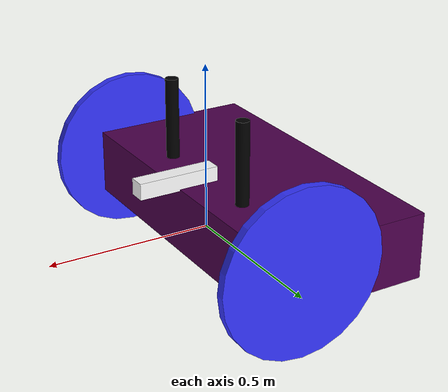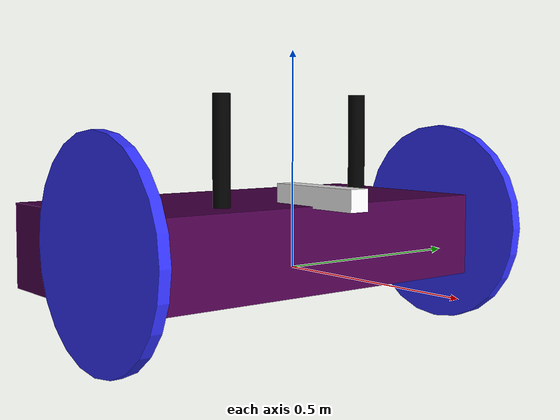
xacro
<?xml version="1.0" ?>
<robot name="robot" xmlns:xacro="http://www.ros.org/wiki/xacro">
  <!-- Materials -->
  <material name="white"><color rgba="1 1 1 1"/></material>
  <material name="orange"><color rgba="0.3 0 0.3 1"/></material>
  <material name="blue"><color rgba="0.2 0.2 1 1"/></material>
  <material name="black"><color rgba="0 0 0 1"/></material>
  <material name="red"><color rgba="1 0 0 1"/></material>
  <material name="gray"><color rgba="0.3 0.3 0.3 1"/></material>

  <!-- Base Link -->
  <link name="base_link"/>

  <link name="base_footprint"/>
  <joint name="base_footprint_joint" type="fixed">
    <parent link="base_link"/>
    <child link="base_footprint"/>
    <origin rpy="0 0 0" xyz="0 0 -0.138"/>
  </joint>

  <!-- Chassis -->
  <joint name="chassis_joint" type="fixed">
    <parent link="base_link"/>
    <child link="chassis"/>
    <origin xyz="-0.4 0 -0.05"/>
  </joint>

  <link name="chassis">
    <inertial>
      <origin rpy="0 0 0" xyz="0.25 0 0.1"/>
      <mass value="1.0"/>
      <inertia ixx="0.08666666666666667" ixy="0.0" ixz="0.0" iyy="0.02416666666666667" iyz="0.0" izz="0.10416666666666666"/>
    </inertial>
    <visual>
      <origin xyz="0.25 0 0.1"/>
      <geometry>
        <box size="0.5 1 0.2"/>
      </geometry>
      <material name="orange"/>
    </visual>
    <collision>
      <origin xyz="0.25 0 0.1"/>
      <geometry>
        <box size="0.5 1 0.2"/>
      </geometry>
    </collision>
  </link>
  <gazebo reference="chassis">
    <material>Gazebo/Orange</material>
  </gazebo>

  <!-- Left Wheel -->
  <joint name="left_wheel_joint" type="continuous">
    <parent link="base_link"/>
    <child link="left_wheel"/>
    <origin rpy="-1.5707963267948966 0 3.141592653589793" xyz="0 0.5 0.075"/>
    <axis xyz="0 0 1"/>
  </joint>

  <link name="left_wheel">
    <visual>
      <geometry>
        <cylinder length="0.026" radius="0.25"/>
      </geometry>
      <material name="blue"/>
    </visual>
    <collision>
      <geometry>
        <cylinder length="0.026" radius="0.25"/>
      </geometry>
    </collision>
    <inertial>
      <origin rpy="0 0 0" xyz="0 0 0"/>
      <mass value="0.05"/>
      <inertia ixx="0.0003" ixy="0.0" ixz="0.0" iyy="0.0003" iyz="0.0" izz="0.0005"/>
    </inertial>
  </link>
  <gazebo reference="left_wheel">
    <material>Gazebo/Blue</material>
  </gazebo>

  <!-- Right Wheel -->
  <joint name="right_wheel_joint" type="continuous">
    <parent link="base_link"/>
    <child link="right_wheel"/>
    <origin rpy="1.5707963267948966 0 3.141592653589793" xyz="0 -0.5 0.075"/>
    <axis xyz="0 0 -1"/>
  </joint>

  <link name="right_wheel">
    <visual>
      <geometry>
        <cylinder length="0.026" radius="0.25"/>
      </geometry>
      <material name="blue"/>
    </visual>
    <collision>
      <geometry>
        <cylinder length="0.026" radius="0.25"/>
      </geometry>
    </collision>
    <inertial>
      <origin rpy="0 0 0" xyz="0 0 0"/>
      <mass value="0.05"/>
      <inertia ixx="0.0003" ixy="0.0" ixz="0.0" iyy="0.0003" iyz="0.0" izz="0.0005"/>
    </inertial>
  </link>
  <gazebo reference="right_wheel">
    <material>Gazebo/Blue</material>
  </gazebo>

  <!-- Caster Wheel -->
  <joint name="caster_wheel_joint" type="fixed">
    <parent link="chassis"/>
    <child link="caster_wheel"/>
    <origin xyz="0.075 0 0.0"/>
  </joint>
  <link name="caster_wheel">
    <visual>
      <geometry>
        <sphere radius="0.05"/>
      </geometry>
      <material name="black"/>
    </visual>
    <collision>
      <geometry>
        <sphere radius="0.05"/>
      </geometry>
    </collision>
    <inertial>
      <origin rpy="0 0 0" xyz="0 0 0"/>
      <mass value="0.01"/>
      <inertia ixx="1e-5" ixy="0.0" ixz="0.0" iyy="1e-5" iyz="0.0" izz="1e-5"/>
    </inertial>
  </link>
  <gazebo reference="caster_wheel">
    <material>Gazebo/Black</material>
    <mu1 value="0.001"/>
    <mu2 value="0.001"/>
  </gazebo>

  <!-- Tail -->
  <joint name="tail" type="fixed">
    <parent link="chassis"/>
    <child link="tail_link"/>
    <origin rpy="0 0 0" xyz="0.5 0 0.22"/>
  </joint>
  <link name="tail_link">
    <visual>
      <geometry>
        <box size="0.25 0.05 0.05"/>
      </geometry>
      <material name="white"/>
    </visual>
    <collision>
      <geometry>
        <box size="0.25 0.05 0.05"/>
      </geometry>
    </collision>
    <inertial>
      <origin rpy="0 0 0" xyz="0.5 0 0.22"/>
      <mass value="0.001"/>
      <inertia ixx="4.17e-7" ixy="0.0" ixz="0.0" iyy="6.77e-5" iyz="0.0" izz="6.77e-5"/>
    </inertial>
  </link>
  <gazebo reference="tail_link">
    <material>Gazebo/White</material>
    <mu1 value="0.001"/>
    <mu2 value="0.001"/>
  </gazebo>

  <!-- Antenna -->
  <joint name="antenna_joint" type="fixed">
    <parent link="chassis"/>
    <child link="antenna"/>
    <origin xyz="0.4 -0.2 0.3" rpy="0 0 0"/>
  </joint>
  <link name="antenna">
    <visual>
      <geometry>
        <cylinder radius="0.02" length="0.3"/>
      </geometry>
      <material name="black"/>
    </visual>
    <collision>
      <geometry>
        <cylinder radius="0.02" length="0.3"/>
      </geometry>
    </collision>
    <inertial>
      <mass value="0.05"/>
      <origin xyz="0 0 0.15"/>
      <inertia ixx="0.0001" ixy="0" ixz="0" iyy="0.0001" iyz="0" izz="0.0001"/>
    </inertial>
  </link>
  <!-- Antenna2 -->
  <joint name="antenna2_joint" type="fixed">
    <parent link="chassis"/>
    <child link="antenna2"/>
    <origin xyz="0.4 0.2 0.3" rpy="0 0 0"/>
  </joint>
  <link name="antenna2">
    <visual>
      <geometry>
        <cylinder radius="0.02" length="0.3"/>
      </geometry>
      <material name="black"/>
    </visual>
    <collision>
      <geometry>
        <cylinder radius="0.02" length="0.3"/>
      </geometry>
    </collision>
    <inertial>
      <mass value="0.05"/>
      <origin xyz="0 0 0.15"/>
      <inertia ixx="0.0001" ixy="0" ixz="0" iyy="0.0001" iyz="0" izz="0.0001"/>
    </inertial>
  </link>

  <!-- Plugins -->
  <gazebo>
    <plugin filename="gz-sim-joint-state-publisher-system" name="gz::sim::systems::JointStatePublisher"/>
    <plugin filename="gz-sim-diff-drive-system" name="gz::sim::systems::DiffDrive">
      <left_joint>left_wheel_joint</left_joint>
      <right_joint>right_wheel_joint</right_joint>
      <child_frame_id>robot/base_link</child_frame_id>
      <wheel_separation>0.291</wheel_separation>
      <wheel_radius>0.25</wheel_radius>
      <odom_publish_frequency>10</odom_publish_frequency>
    </plugin>
  </gazebo>
</robot>
